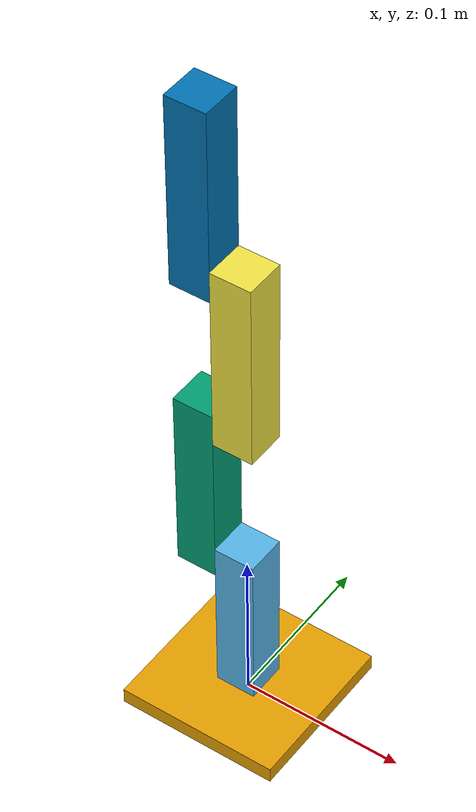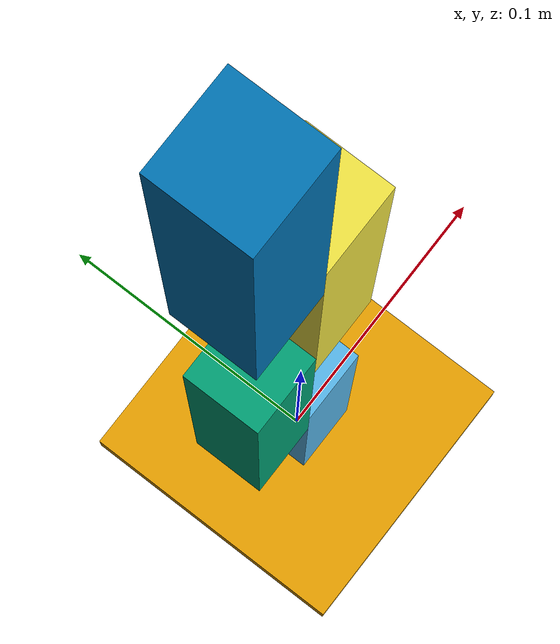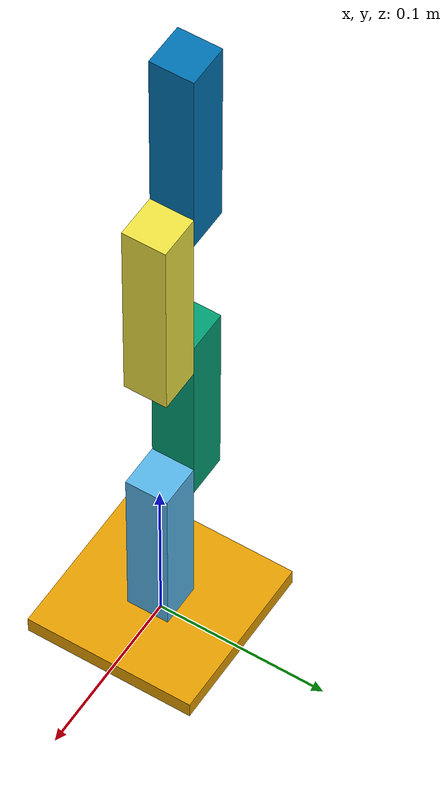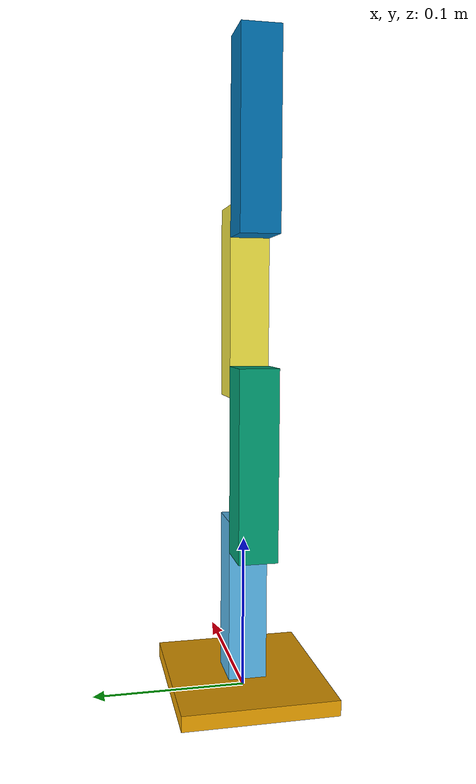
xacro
<?xml version='1.0'?>
<robot xmlns:xacro="http://www.ros.org/wiki/xacro" name="robot_3r">

    <xacro:property name="basex" value="${100/1000}" />
    <xacro:property name="basey" value="${100/1000}" />
    <xacro:property name="basez" value="${10/1000}" />

    <xacro:property name="blx" value="${25/1000}" />
    <xacro:property name="bly" value="${25/1000}" />
    <xacro:property name="blz" value="${110/1000}" />

    <xacro:property name="bl2x" value="${25/1000}" />
    <xacro:property name="bl2y" value="${25/1000}" />
    <xacro:property name="bl2z" value="${120/1000}" />

    <xacro:property name="offset1" value="${50/1000}" />

    <xacro:property name="offset2a" value="${12.5/1000}" />
    <xacro:property name="offset2b" value="${45/1000}" />
    <xacro:property name="offset2c" value="${50/1000}" />
    <xacro:property name="offset2d" value="${100/1000}" />

    <link name="base_link">
        <visual>
            <!-- Box geometry -->
            <geometry>
                <!-- Unidades por defecto en metros -->
                <box size="${basex} ${basey} ${basez}"/>
            </geometry>

            <origin xyz="0 0 ${basez/2}" rpy="0 0 0"/>
        </visual>
        <!-- Determina caracteristicas fisicas del robot -->
        <inertial>
            <mass value="1"/>
            <!-- Ubicacion del centro de masa -->
            <origin xyz="0 0 0" rpy="0 0 0"/>
            <!-- Tensor de inercia -->
            <inertia ixx="1" ixy="0" ixz="0" iyy="1" iyz="0" izz="1"/>
        </inertial>
        <!-- Esta parte define como interactua con otros objetos -->
        <collision>

            <!-- Unidades por defecto en metros -->
            <geometry>
                <box size="${basex} ${basey} ${basez}"/>
            </geometry>
            <origin xyz="0 0 ${basez}" rpy="0 0 0"/>
        </collision>
    </link>

    <joint name="base_boxn1_joint" type="fixed">
        <parent link="base_link"/>
        <child link="boxn1_link"/>
        <origin xyz="0 0 ${offset1+basez}" rpy="0 0 0"/>
    </joint>

    <link name="boxn1_link">
        <visual>
            <!-- Box geometry -->
            <geometry>
                <!-- Unidades por defecto en metros -->
                <box size="${blx} ${bly} ${blz}"/>
            </geometry>

            <origin xyz="0 0 0" rpy="0 0 0"/>
        </visual>
        <!-- Determina caracteristicas fisicas del robot -->
        <inertial>
            <mass value="1"/>
            <!-- Ubicacion del centro de masa -->
            <origin xyz="0 0 0" rpy="0 0 0"/>
            <!-- Tensor de inercia -->
            <inertia ixx="1" ixy="0" ixz="0" iyy="1" iyz="0" izz="1"/>
        </inertial>
        <!-- Esta parte define como interactua con otros objetos -->
        <collision>

            <!-- Unidades por defecto en metros -->
            <geometry>
                <box size="${blx} ${bly} ${blz}"/>
            </geometry>
             <origin xyz="0 0 0" rpy="0 0 0"/>
        </collision>
    </link>

    <joint name="boxn1_boxn2_joint" type="revolute">
        <parent link="boxn1_link"/>
        <child link="boxn2_link"/>
        <origin xyz="-${offset2a} 0 ${offset2b}" rpy="0 0 0"/>
        <axis xyz="1 0 0"/>
        <limit effort="1" lower="0" upper="${2*pi}" velocity="1"/>
        <dynamics damping="1" friction="1"/>
    </joint>

   <link name="boxn2_link">
        <visual>
            <!-- Box geometry -->
            <geometry>
                <!-- Unidades por defecto en metros -->
                <box size="${bl2x} ${bl2y} ${bl2z}"/>
            </geometry>

            <origin xyz="-${offset2a} 0 ${offset2c}" rpy="0 0 0"/>
        </visual>
        <!-- Determina caracteristicas fisicas del robot -->
        <inertial>
            <mass value="1"/>
            <!-- Ubicacion del centro de masa -->
            <origin xyz="0 0 0" rpy="0 0 0"/>
            <!-- Tensor de inercia -->
            <inertia ixx="1" ixy="0" ixz="0" iyy="1" iyz="0" izz="1"/>
        </inertial>
        <!-- Esta parte define como interactua con otros objetos -->
        <collision>

            <!-- Unidades por defecto en metros -->
            <geometry>
                <box size="${bl2x} ${bl2y} ${bl2z}"/>
            </geometry>
             <origin xyz="0 0 0" rpy="0 0 0"/>
        </collision>
    </link>

    <joint name="boxn2_boxn3_joint" type="revolute">
        <parent link="boxn2_link"/>
        <child link="boxn3_link"/>
        <origin xyz="0 0 ${offset2d}" rpy="0 0 0"/>
        <axis xyz="1 0 0"/>
        <limit effort="1" lower="0" upper="${2*pi}" velocity="1"/>
        <dynamics damping="1" friction="1"/>
    </joint>

    <link name="boxn3_link">
        <visual>
            <!-- Box geometry -->
            <geometry>
                <!-- Unidades por defecto en metros -->
                <box size="${bl2x} ${bl2y} ${bl2z}"/>
            </geometry>

            <origin xyz="${offset2a} 0 ${offset2c}" rpy="0 0 0"/>
        </visual>
        <!-- Determina caracteristicas fisicas del robot -->
        <inertial>
            <mass value="1"/>
            <!-- Ubicacion del centro de masa -->
            <origin xyz="0 0 0" rpy="0 0 0"/>
            <!-- Tensor de inercia -->
            <inertia ixx="1" ixy="0" ixz="0" iyy="1" iyz="0" izz="1"/>
        </inertial>
        <!-- Esta parte define como interactua con otros objetos -->
        <collision>

            <!-- Unidades por defecto en metros -->
            <geometry>
                <box size="${bl2x} ${bl2y} ${bl2z}"/>
            </geometry>
             <origin xyz="0 0 0" rpy="0 0 0"/>
        </collision>
    </link>

    <joint name="boxn3_boxn4_joint" type="revolute">
        <parent link="boxn3_link"/>
        <child link="boxn4_link"/>
        <origin xyz="0 0 ${offset2d}" rpy="0 0 0"/>
        <axis xyz="1 0 0"/>
        <limit effort="1" lower="0" upper="${2*pi}" velocity="1"/>
        <dynamics damping="1" friction="1"/>
    </joint>

    <link name="boxn4_link">
        <visual>
            <!-- Box geometry -->
            <geometry>
                <!-- Unidades por defecto en metros -->
                <box size="${bl2x} ${bl2y} ${bl2z}"/>
            </geometry>

            <origin xyz="-${offset2a} 0 ${offset2c}" rpy="0 0 0"/>
        </visual>
        <!-- Determina caracteristicas fisicas del robot -->
        <inertial>
            <mass value="1"/>
            <!-- Ubicacion del centro de masa -->
            <origin xyz="0 0 0" rpy="0 0 0"/>
            <!-- Tensor de inercia -->
            <inertia ixx="1" ixy="0" ixz="0" iyy="1" iyz="0" izz="1"/>
        </inertial>
        <!-- Esta parte define como interactua con otros objetos -->
        <collision>

            <!-- Unidades por defecto en metros -->
            <geometry>
                <box size="${bl2x} ${bl2y} ${bl2z}"/>
            </geometry>
             <origin xyz="0 0 0" rpy="0 0 0"/>
        </collision>
    </link>

</robot>
